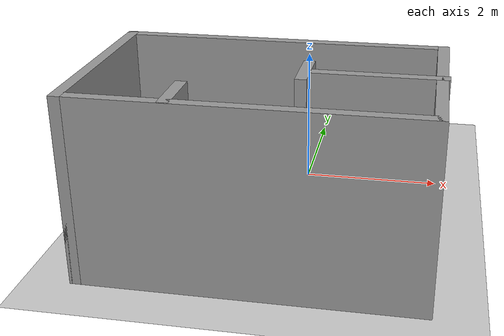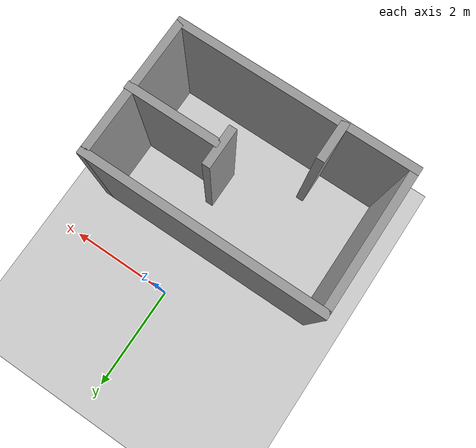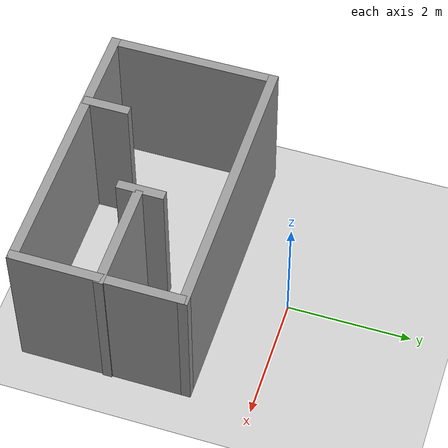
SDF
<sdf version="1.7">
 <world name="default">
  <light name="sun" type="directional">
   <pose>0 0 10 0 -0 0</pose>
   <diffuse>0.8 0.8 0.8 1</diffuse>
   <specular>0.2 0.2 0.2 1</specular>
   <attenuation>
    <range>1000</range>
    <constant>0.9</constant>
    <linear>0.01</linear>
    <quadratic>0.001</quadratic>
   </attenuation>
   <direction>-0.5 0.1 -0.9</direction>
   <spot><inner_angle>0</inner_angle><outer_angle>0</outer_angle><falloff>0</falloff></spot>
  </light>
  <model name="ground_plane">
   <static>1</static>
   <link name="link">
    <collision name="collision">
     <geometry><plane><normal>0 0 1</normal><size>100 100</size></plane></geometry>
     <surface>
      <contact><collide_bitmask>65535</collide_bitmask></contact>
      <friction><ode><mu>100</mu><mu2>50</mu2></ode></friction>
     </surface>
    </collision>
    <visual name="visual">
     <cast_shadows>0</cast_shadows>
     <geometry><plane><normal>0 0 1</normal><size>100 100</size></plane></geometry>
     <material>
      <script><uri>file://media/materials/scripts/gazebo.material</uri><name>Gazebo/Grey</name></script>
     </material>
    </visual>
   </link>
  </model>
  <gravity>0 0 -9.8</gravity>
  <magnetic_field>6e-06 2.3e-05 -4.2e-05</magnetic_field>
  <atmosphere type="adiabatic"/>
  <physics type="ode">
   <max_step_size>0.001</max_step_size>
   <real_time_factor>1</real_time_factor>
   <real_time_update_rate>1000</real_time_update_rate>
  </physics>
  <scene><ambient>0.4 0.4 0.4 1</ambient><background>0.7 0.7 0.7 1</background><shadows>1</shadows></scene>
  <audio><device>default</device></audio>
  <spherical_coordinates>
   <surface_model>EARTH_WGS84</surface_model>
   <latitude_deg>0</latitude_deg>
   <longitude_deg>0</longitude_deg>
   <elevation>0</elevation>
   <heading_deg>0</heading_deg>
  </spherical_coordinates>
  <model name="map2">
   <pose>-0.205 -1.8475 0 0 -0 0</pose>
   <link name="Wall_0">
    <collision name="Wall_0_Collision">
     <geometry><box><size>2.75 0.15 2.5</size></box></geometry>
     <pose>0 0 1.25 0 -0 0</pose>
    </collision>
    <visual name="Wall_0_Visual">
     <pose>0 0 1.25 0 -0 0</pose>
     <geometry><box><size>2.75 0.15 2.5</size></box></geometry>
     <material>
      <script><uri>file://media/materials/scripts/gazebo.material</uri><name>Gazebo/Grey</name></script>
      <ambient>1 1 1 1</ambient>
     </material>
     <meta><layer>0</layer></meta>
    </visual>
    <pose>-2.185 -0.4725 0 0 -0 -1.5708</pose>
   </link>
   <link name="Wall_1">
    <collision name="Wall_1_Collision">
     <geometry><box><size>4.5 0.15 2.5</size></box></geometry>
     <pose>0 0 1.25 0 -0 0</pose>
    </collision>
    <visual name="Wall_1_Visual">
     <pose>0 0 1.25 0 -0 0</pose>
     <geometry><box><size>4.5 0.15 2.5</size></box></geometry>
     <material>
      <script><uri>file://media/materials/scripts/gazebo.material</uri><name>Gazebo/Grey</name></script>
      <ambient>1 1 1 1</ambient>
     </material>
     <meta><layer>0</layer></meta>
    </visual>
    <pose>-0.01 -1.7725 0 0 -0 0</pose>
   </link>
   <link name="Wall_11">
    <collision name="Wall_11_Collision">
     <geometry><box><size>1.75 0.15 2.5</size></box></geometry>
     <pose>0 0 1.25 0 -0 0</pose>
    </collision>
    <visual name="Wall_11_Visual">
     <pose>0 0 1.25 0 -0 0</pose>
     <geometry><box><size>1.75 0.15 2.5</size></box></geometry>
     <material>
      <script><uri>file://media/materials/scripts/gazebo.material</uri><name>Gazebo/Grey</name></script>
      <ambient>1 1 1 1</ambient>
     </material>
     <meta><layer>0</layer></meta>
    </visual>
    <pose>1.385 -0.4325 0 0 -0 3.14159</pose>
   </link>
   <link name="Wall_2">
    <collision name="Wall_2_Collision">
     <geometry><box><size>2.75 0.15 2.5</size></box></geometry>
     <pose>0 0 1.25 0 -0 0</pose>
    </collision>
    <visual name="Wall_2_Visual">
     <pose>0 0 1.25 0 -0 0</pose>
     <geometry><box><size>2.75 0.15 2.5</size></box></geometry>
     <material>
      <script><uri>file://media/materials/scripts/gazebo.material</uri><name>Gazebo/Grey</name></script>
      <ambient>1 1 1 1</ambient>
     </material>
     <meta><layer>0</layer></meta>
    </visual>
    <pose>2.165 -0.4725 0 0 -0 1.5708</pose>
   </link>
   <link name="Wall_3">
    <collision name="Wall_3_Collision">
     <geometry><box><size>4.5 0.15 2.5</size></box></geometry>
     <pose>0 0 1.25 0 -0 0</pose>
    </collision>
    <visual name="Wall_3_Visual">
     <pose>0 0 1.25 0 -0 0</pose>
     <geometry><box><size>4.5 0.15 2.5</size></box></geometry>
     <material>
      <script><uri>file://media/materials/scripts/gazebo.material</uri><name>Gazebo/Grey</name></script>
      <ambient>1 1 1 1</ambient>
     </material>
     <meta><layer>0</layer></meta>
    </visual>
    <pose>-0.01 0.8275 0 0 -0 3.14159</pose>
   </link>
   <link name="Wall_5">
    <collision name="Wall_5_Collision">
     <geometry><box><size>0.75 0.15 2.5</size></box></geometry>
     <pose>0 0 1.25 0 -0 0</pose>
    </collision>
    <visual name="Wall_5_Visual">
     <pose>0 0 1.25 0 -0 0</pose>
     <geometry><box><size>0.75 0.15 2.5</size></box></geometry>
     <material>
      <script><uri>file://media/materials/scripts/gazebo.material</uri><name>Gazebo/Grey</name></script>
      <ambient>1 1 1 1</ambient>
     </material>
     <meta><layer>0</layer></meta>
    </visual>
    <pose>-0.905 -1.4525 0 0 -0 1.5708</pose>
   </link>
   <link name="Wall_7">
    <collision name="Wall_7_Collision">
     <geometry><box><size>0.75 0.15 2.5</size></box></geometry>
     <pose>0 0 1.25 0 -0 0</pose>
    </collision>
    <visual name="Wall_7_Visual">
     <pose>0 0 1.25 0 -0 0</pose>
     <geometry><box><size>0.75 0.15 2.5</size></box></geometry>
     <material>
      <script><uri>file://media/materials/scripts/gazebo.material</uri><name>Gazebo/Grey</name></script>
      <ambient>1 1 1 1</ambient>
     </material>
     <meta><layer>0</layer></meta>
    </visual>
    <pose>0.485 -0.4025 0 0 -0 -1.5708</pose>
   </link>
   <static>1</static>
  </model>
 </world>
</sdf>
